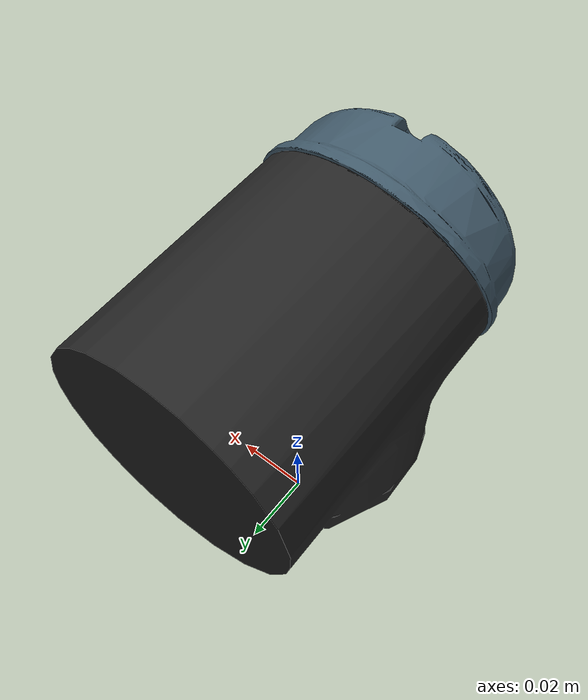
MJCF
<mujoco model="wrist2">
  <default>
    <default class="visual">
      <geom group="2" type="mesh" contype="0" conaffinity="0"/>
    </default>
    <default class="collision">
      <geom group="3" type="mesh"/>
    </default>
  </default>
  <asset>
    <material name="blau.002" specular="0.5" shininess="0.25" rgba="0.250880 0.347520 0.409600 1.000000"/>
    <material name="verbindung.003" specular="0.5" shininess="0.25" rgba="0.142720 0.142720 0.142720 1.000000"/>
    <mesh file="wrist2_0.obj"/>
    <mesh file="wrist2_1.obj"/>
  </asset>
  <worldbody>
    <body name="wrist2">
      <geom mesh="wrist2_0" material="verbindung.003" class="visual"/>
      <geom mesh="wrist2_1" material="blau.002" class="visual"/>
      <geom mesh="wrist2_0" class="collision"/>
      <geom mesh="wrist2_1" class="collision"/>
    </body>
  </worldbody>
</mujoco>
